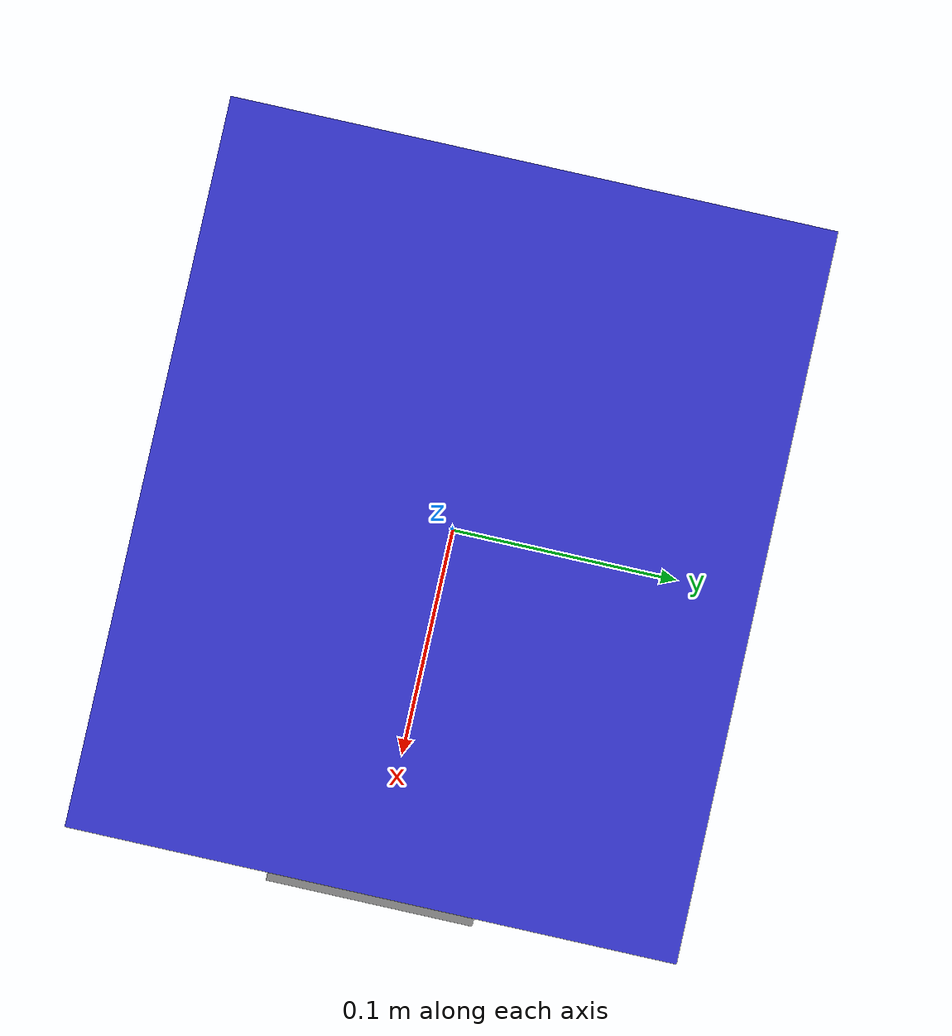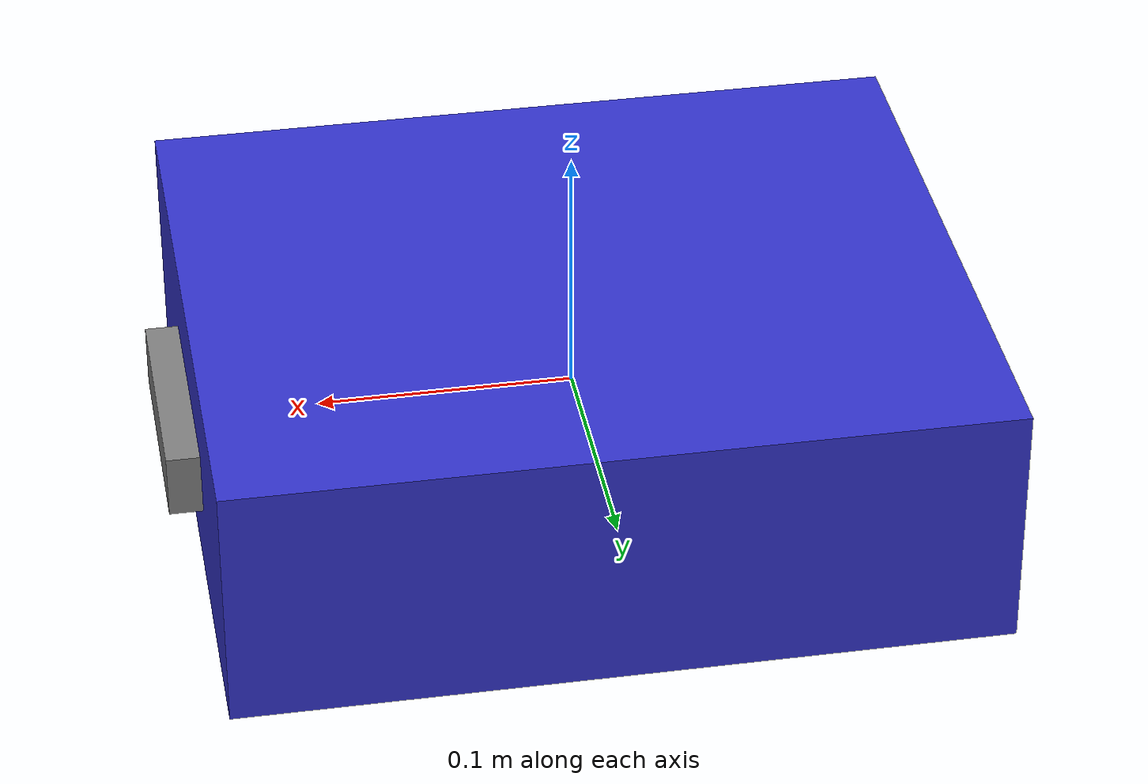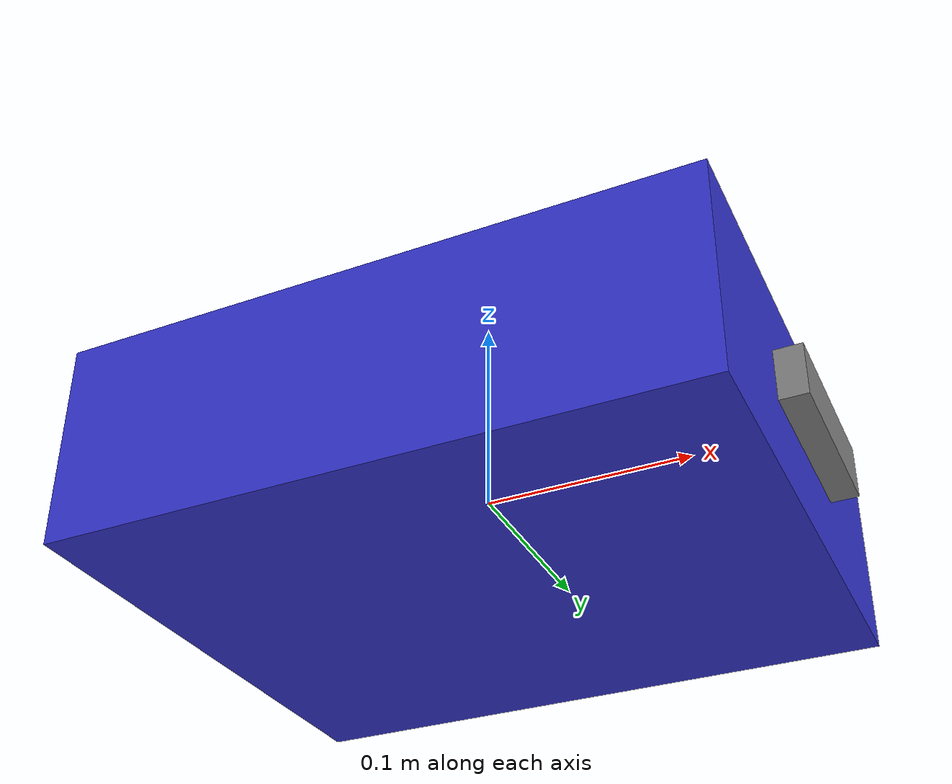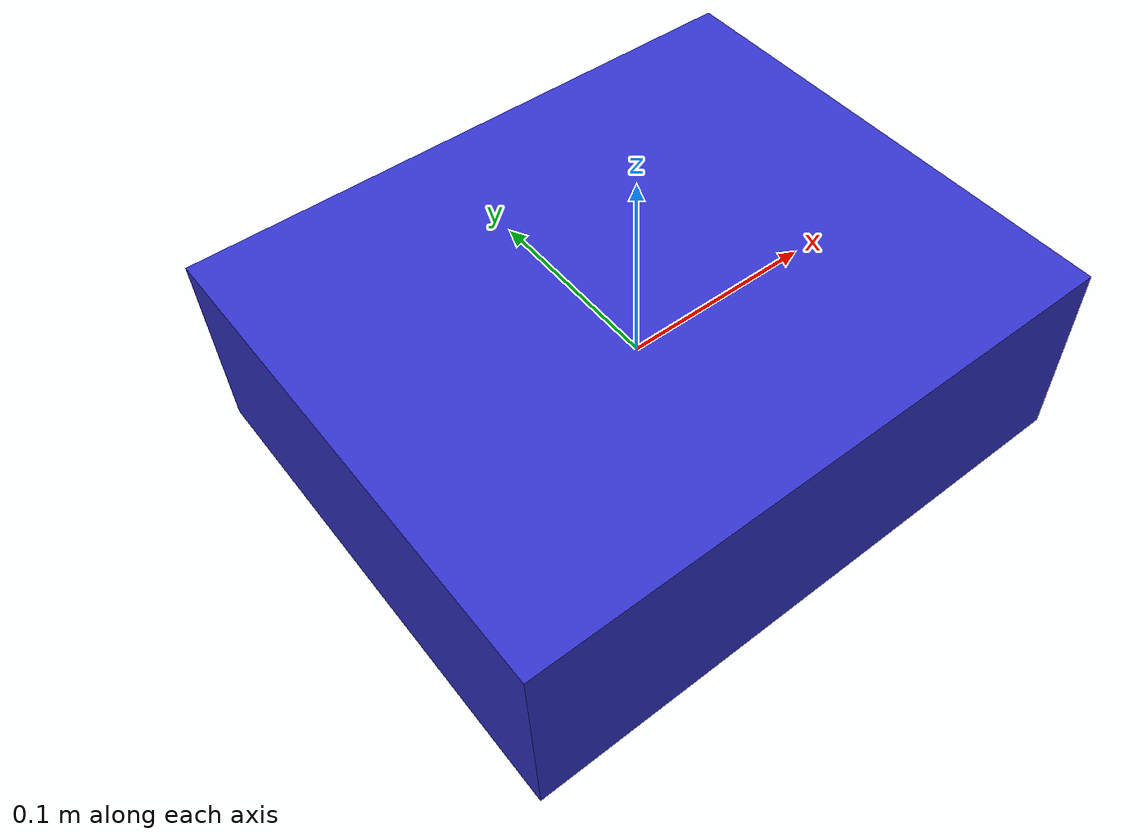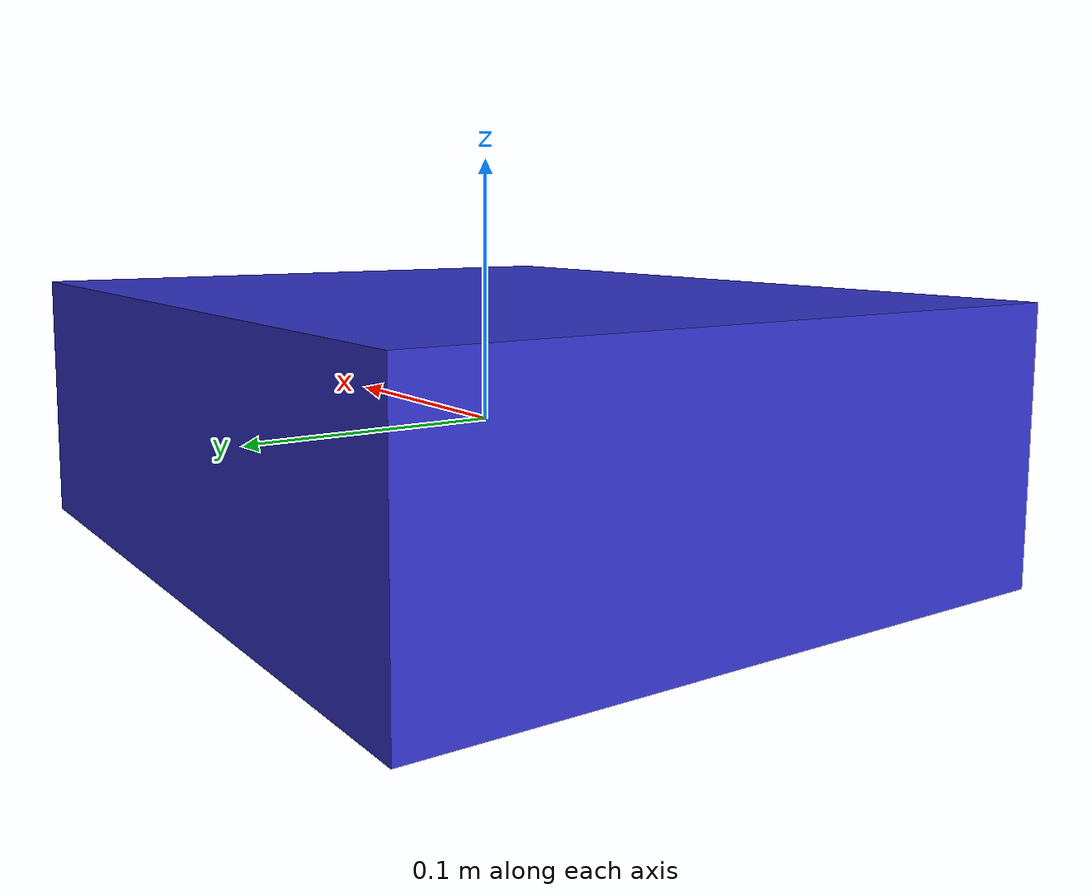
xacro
<?xml version="1.0"?>
<robot name="cleaning_robot" xmlns:xacro="http://www.ros.org/wiki/xacro">

  <!-- Base link - center of the robot chassis -->
  <link name="base_link">
    <visual>
      <geometry>
        <box size="0.30 0.25 0.10"/>
      </geometry>
      <material name="blue">
        <color rgba="0.2 0.2 0.8 1.0"/>
      </material>
    </visual>
  </link>

  <!-- Camera link - RealSense D455 mounting position -->
  <joint name="camera_joint" type="fixed">
    <parent link="base_link"/>
    <child link="camera_link"/>
    <!-- Default: camera mounted 15cm forward, at same height as base center -->
    <origin xyz="0.15 0.0 0.0" rpy="0 0 0"/>
  </joint>

  <link name="camera_link">
    <visual>
      <geometry>
        <box size="0.026 0.090 0.025"/>
      </geometry>
      <material name="gray">
        <color rgba="0.5 0.5 0.5 1.0"/>
      </material>
    </visual>
  </link>

  <!-- RealSense publishes optical frames, which have a different orientation -->
  <!-- Optical frame: Z forward, X right, Y down -->
  <joint name="camera_depth_joint" type="fixed">
    <parent link="camera_link"/>
    <child link="camera_depth_frame"/>
    <origin xyz="0 0 0" rpy="${-pi/2} 0 ${-pi/2}"/>
  </joint>

  <link name="camera_depth_frame"/>

  <joint name="camera_depth_optical_joint" type="fixed">
    <parent link="camera_depth_frame"/>
    <child link="camera_depth_optical_frame"/>
    <origin xyz="0 0 0" rpy="0 0 0"/>
  </joint>

  <link name="camera_depth_optical_frame"/>

  <joint name="camera_color_joint" type="fixed">
    <parent link="camera_link"/>
    <child link="camera_color_frame"/>
    <origin xyz="0 0 0" rpy="${-pi/2} 0 ${-pi/2}"/>
  </joint>

  <link name="camera_color_frame"/>

  <joint name="camera_color_optical_joint" type="fixed">
    <parent link="camera_color_frame"/>
    <child link="camera_color_optical_frame"/>
    <origin xyz="0 0 0" rpy="0 0 0"/>
  </joint>

  <link name="camera_color_optical_frame"/>

  <joint name="camera_infra1_joint" type="fixed">
    <parent link="camera_link"/>
    <child link="camera_infra1_frame"/>
    <origin xyz="0 0 0" rpy="${-pi/2} 0 ${-pi/2}"/>
  </joint>

  <link name="camera_infra1_frame"/>

  <joint name="camera_infra1_optical_joint" type="fixed">
    <parent link="camera_infra1_frame"/>
    <child link="camera_infra1_optical_frame"/>
    <origin xyz="0 0 0" rpy="0 0 0"/>
  </joint>

  <link name="camera_infra1_optical_frame"/>

  <joint name="camera_infra2_joint" type="fixed">
    <parent link="camera_link"/>
    <child link="camera_infra2_frame"/>
    <origin xyz="0 0.055 0" rpy="${-pi/2} 0 ${-pi/2}"/>
  </joint>

  <link name="camera_infra2_frame"/>

  <joint name="camera_infra2_optical_joint" type="fixed">
    <parent link="camera_infra2_frame"/>
    <child link="camera_infra2_optical_frame"/>
    <origin xyz="0 0 0" rpy="0 0 0"/>
  </joint>

  <link name="camera_infra2_optical_frame"/>

  <joint name="camera_imu_joint" type="fixed">
    <parent link="camera_link"/>
    <child link="camera_imu_optical_frame"/>
    <origin xyz="0 0 0" rpy="${-pi/2} 0 ${-pi/2}"/>
  </joint>

  <link name="camera_imu_optical_frame"/>

</robot>
